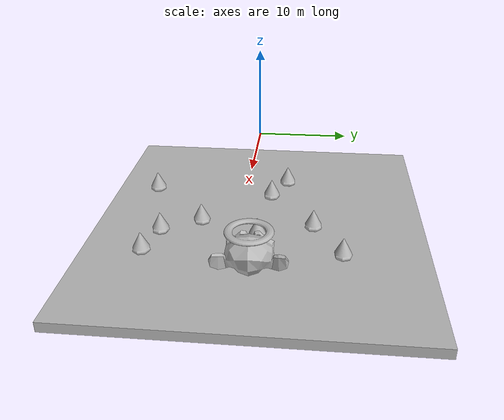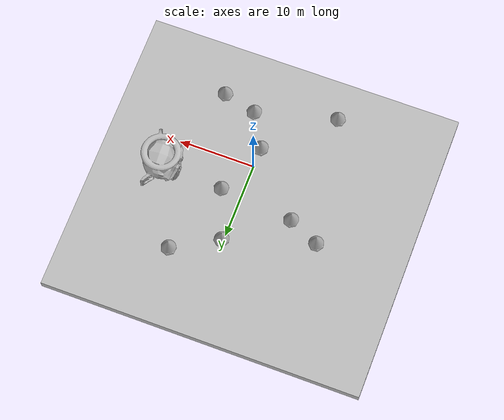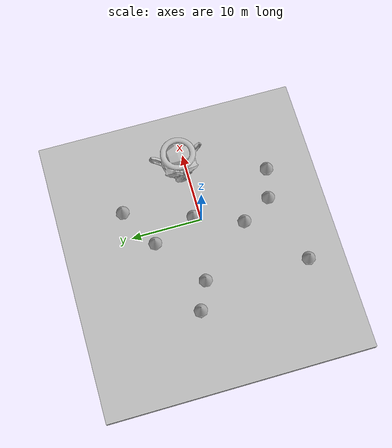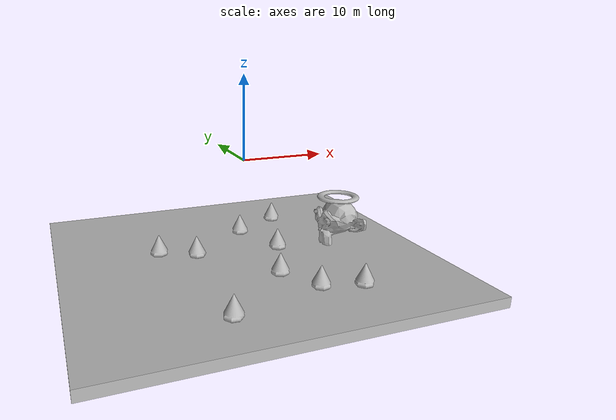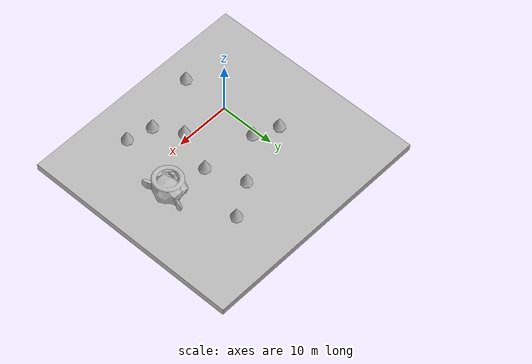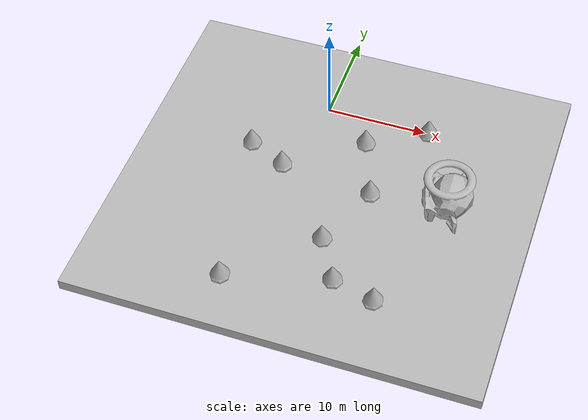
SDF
<sdf version="1.6">
 <world name="candy_world">
  <physics type="ode">
   <max_step_size>0.01</max_step_size>
   <real_time_factor>1</real_time_factor>
   <real_time_update_rate>100</real_time_update_rate>
  </physics>
  <include><uri>model://candyfloor</uri><name>candyfloor</name><pose>0 0 -12 0 0 0</pose></include>
  <include><uri>model://monkey_king</uri><name>monkey_king</name><pose>13 0 -9.5 0 0 3.14</pose></include>
  <include><uri>model://monkey_totem</uri><name>monkey_totem</name><pose>4.6 0 -11.5 0 0 0</pose></include>
  <include><uri>model://monkey_totem</uri><name>monkey_totem2</name><pose>-5.7 1 -11.5 0 0 0.8</pose></include>
  <include><uri>model://monkey_totem</uri><name>monkey_totem3</name><pose>2 6.8 -11.5 0 0 1.3</pose></include>
  <include><uri>model://monkey_totem</uri><name>monkey_totem4</name><pose>1.67 -7.3 -11.5 0 0 2</pose></include>
  <include>
   <uri>model://monkey_totem</uri>
   <name>monkey_totem5</name>
   <pose>8.12 10.36 -11.5 0 0 2.6</pose>
  </include>
  <include><uri>model://monkey_totem</uri><name>monkey_totem6</name><pose>-10 3 -11.5 0 0 3</pose></include>
  <include>
   <uri>model://monkey_totem</uri>
   <name>monkey_totem7</name>
   <pose>-6.7 -15 -11.5 0 0 4.2</pose>
  </include>
  <include><uri>model://monkey_totem</uri><name>monkey_totem8</name><pose>9 -13.2 -11.5 0 0 -2</pose></include>
  <include><uri>model://monkey_totem</uri><name>monkey_totem9</name><pose>4.4 -12 -11.5 0 0 0.9</pose></include>
  <plugin name="underwater" filename="lib_gazebo_underwater.so">
   <model_name>flat_fish</model_name>
   <link_name>flat_fish_body</link_name>
   <center_of_buoyancy>0 0 0.1</center_of_buoyancy>
   <buoyancy>24</buoyancy>
  </plugin>
 </world>
</sdf>

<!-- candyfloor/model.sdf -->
<sdf version="1.4">
    <model name="candyfloor">
        <pose>0 0 0 0 0 0</pose>
        <static>true</static>
        <link name="candyfloor_body">
            <visual name="visual">
                <geometry>
                    <mesh>
                       <uri>model://candyfloor/visual.osg</uri>
                    </mesh>
                </geometry>
            </visual>
            <collision name="collision">
                <geometry>
                    <mesh>
                        <uri>model://candyfloor/collision.stl</uri>
                    </mesh>
                </geometry>
            </collision>
            <inertial>
                <pose>0 0 -1 0 0 0</pose>
                <inertia>
                    <ixx>0.0</ixx>
                    <ixy>0</ixy>
                    <ixz>0.0</ixz>
                    <iyy>0.0</iyy>
                    <iyz>0</iyz>
                    <izz>0.0</izz>
                </inertia>
                <mass>1.0</mass>
            </inertial>
        </link>
    </model>
</sdf>

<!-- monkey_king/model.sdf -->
<sdf version="1.4">
    <model name="monkey_king">
        <pose>0 0 0 0 0 0</pose>
        <static>true</static>
        <link name="monkey_king">
            <visual name="visual">
                <geometry>
                    <mesh>
                       <uri>model://monkey_king/visual.osg</uri>
                    </mesh>
                </geometry>
            </visual>
            <collision name="collision">
                <geometry>
                    <mesh>
                        <uri>model://monkey_king/collision.stl</uri>
                    </mesh>
                </geometry>
            </collision>
            <inertial>
                <pose>0 0 -1 0 0 0</pose>
                <inertia>
                    <ixx>0.0</ixx>
                    <ixy>0</ixy>
                    <ixz>0.0</ixz>
                    <iyy>0.0</iyy>
                    <iyz>0</iyz>
                    <izz>0.0</izz>
                </inertia>
                <mass>1.0</mass>
            </inertial>
        </link>
    </model>
</sdf>

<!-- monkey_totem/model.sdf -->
<sdf version="1.4">
    <model name="monkey_totem">
        <pose>0 0 0 0 0 0</pose>
        <static>true</static>
        <link name="monkey_totem">
            <visual name="visual">
                <geometry>
                    <mesh>
                       <uri>model://monkey_totem/visual.osg</uri>
                    </mesh>
                </geometry>
            </visual>
            <collision name="collision">
                <geometry>
                    <mesh>
                        <uri>model://monkey_totem/collision.stl</uri>
                    </mesh>
                </geometry>
            </collision>
            <inertial>
                <pose>0 0 -1 0 0 0</pose>
                <inertia>
                    <ixx>0.0</ixx>
                    <ixy>0</ixy>
                    <ixz>0.0</ixz>
                    <iyy>0.0</iyy>
                    <iyz>0</iyz>
                    <izz>0.0</izz>
                </inertia>
                <mass>1.0</mass>
            </inertial>
        </link>
    </model>
</sdf>
